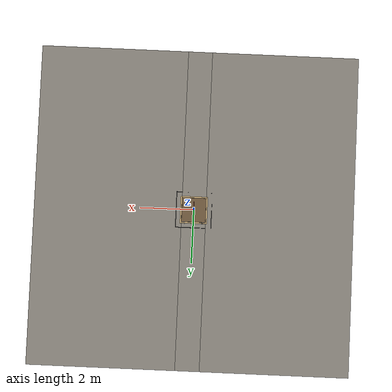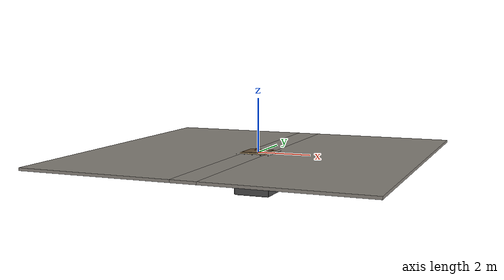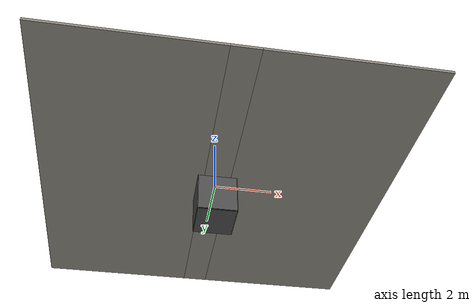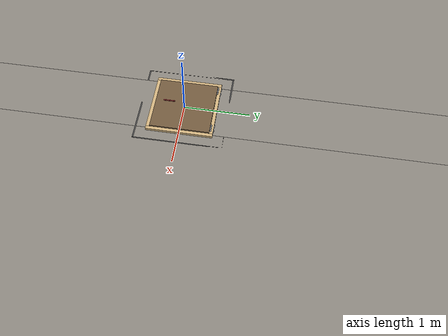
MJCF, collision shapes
<?xml version="1.0" ?>
<mujoco model="db0360_hatch_floor_simple">
  <compiler angle="radian" meshdir="../../hardware" texturedir="../../textures" autolimits="true" inertiafromgeom="false"/>
  <option timestep="0.002" integrator="implicitfast" cone="elliptic" impratio="10" noslip_iterations="3">
    <flag multiccd="enable"/>
  </option>
  <size memory="16M"/>
  <default>
    <geom condim="4" solref="0.005 1" solimp="0.95 0.99 0.001"/>
    <joint solreflimit="0.005 1" solimplimit="0.95 0.99 0.001"/>
    <tendon solreflimit="0.005 1"/>
    <equality solref="0.002 1"/>
  </default>
  <visual>
    <headlight ambient="0.4 0.4 0.4" diffuse="0.7 0.7 0.7" specular="0.2 0.2 0.2"/>
    <quality shadowsize="4096"/>
    <map znear="0.01" zfar="60"/>
  </visual>
  <asset>
    <mesh name="pull_1e5d69a91a" file="pull_1e5d69a91a.obj"/>
    <material name="mat_floor" rgba="0.55 0.53 0.5 1" specular="0.2" shininess="0.15" reflectance="0"/>
    <material name="mat_wall" rgba="0.78 0.76 0.7 1" specular="0.2" shininess="0.1" reflectance="0"/>
    <material name="mat_pit" rgba="0.3 0.3 0.3 1" specular="0.2" shininess="0.1" reflectance="0"/>
    <material name="mat_frame" rgba="0.82 0.7 0.5 1" specular="0.2" shininess="0.45" reflectance="0"/>
    <material name="mat_leaf" rgba="0.451 0.355 0.243 1" specular="0.2" shininess="0.5" reflectance="0"/>
    <material name="mat_hinge" rgba="0.65 0.66 0.68 1" specular="0.74" shininess="0.5" reflectance="0.36"/>
    <material name="mat_op_stainless" rgba="0.75 0.76 0.77 1" specular="0.8" shininess="0.65" reflectance="0.4"/>
    <texture name="skybox" type="skybox" builtin="gradient" rgb1="0.6 0.7 0.85" rgb2="0.9 0.92 0.95" width="256" height="256"/>
  </asset>
  <worldbody>
    <light name="sun" pos="1.5 -2.5 4" dir="-0.3 0.5 -0.8" directional="true" diffuse="0.8 0.8 0.8" specular="0.3 0.3 0.3" castshadow="true"/>
    <light name="fill" pos="-1.5 2.5 3" dir="0.3 -0.5 -0.7" directional="true" diffuse="0.35 0.35 0.4" castshadow="false"/>
    <camera name="robot_view" pos="0 -1.875 0.98" xyaxes="1 0 0 0 0.26963 0.962964" fovy="52"/>
    <camera name="far_view" pos="0 1.875 0.98" xyaxes="-1 0 0 0 -0.26963 0.962964" fovy="52"/>
    <camera name="iso" pos="1.425 -1.575 1.28" xyaxes="0.741536 0.670913 0 -0.242917 0.268487 0.932151" fovy="46"/>
    <camera name="detail_handle" pos="0.35 -0.019 0.2075" xyaxes="0.843661 0.536875 0 -0.426006 0.669439 0.608581" fovy="38"/>
    <geom name="floor_a" type="box" size="2.7725 6 0.05" pos="-3.2275 0 -0.05" material="mat_floor" group="0" contype="1" conaffinity="1" friction="0.6 0.005 0.0001" density="2400"/>
    <geom name="floor_b" type="box" size="2.7725 6 0.05" pos="3.2275 0 -0.05" material="mat_floor" group="0" contype="1" conaffinity="1" friction="0.6 0.005 0.0001" density="2400"/>
    <geom name="floor_c" type="box" size="0.455 2.7725 0.05" pos="0 -3.2275 -0.05" material="mat_floor" group="0" contype="1" conaffinity="1" friction="0.6 0.005 0.0001" density="2400"/>
    <geom name="floor_d" type="box" size="0.455 2.7725 0.05" pos="0 3.2275 -0.05" material="mat_floor" group="0" contype="1" conaffinity="1" friction="0.6 0.005 0.0001" density="2400"/>
    <geom name="pit_floor" type="box" size="0.655 0.655 0.02" pos="0 0 -1.5" material="mat_pit" group="0" contype="1" conaffinity="1" friction="0.6 0.005 0.0001" density="2400"/>
    <geom name="pit_wall_l" type="box" size="0.01 0.675 0.75" pos="-0.665 0 -0.75" material="mat_pit" group="0" contype="1" conaffinity="1" friction="0.6 0.005 0.0001" density="2400"/>
    <geom name="pit_wall_r" type="box" size="0.01 0.675 0.75" pos="0.665 0 -0.75" material="mat_pit" group="0" contype="1" conaffinity="1" friction="0.6 0.005 0.0001" density="2400"/>
    <geom name="pit_wall_n" type="box" size="0.655 0.01 0.75" pos="0 -0.665 -0.75" material="mat_pit" group="0" contype="1" conaffinity="1" friction="0.6 0.005 0.0001" density="2400"/>
    <geom name="pit_wall_f" type="box" size="0.655 0.01 0.75" pos="0 0.665 -0.75" material="mat_pit" group="0" contype="1" conaffinity="1" friction="0.6 0.005 0.0001" density="2400"/>
    <geom name="curb_l" type="box" size="0.025 0.505 0.02" pos="-0.48 0 0.02" material="mat_frame" group="0" contype="1" conaffinity="1" friction="0.6 0.005 0.0001" density="7850"/>
    <geom name="curb_r" type="box" size="0.025 0.505 0.02" pos="0.48 0 0.02" material="mat_frame" group="0" contype="1" conaffinity="1" friction="0.6 0.005 0.0001" density="7850"/>
    <geom name="curb_n" type="box" size="0.455 0.025 0.02" pos="0 -0.48 0.02" material="mat_frame" group="0" contype="1" conaffinity="1" friction="0.6 0.005 0.0001" density="7850"/>
    <geom name="curb_f" type="box" size="0.455 0.025 0.02" pos="0 0.48 0.02" material="mat_frame" group="0" contype="1" conaffinity="1" friction="0.6 0.005 0.0001" density="7850"/>
    <geom name="hatch_hinge_0_curb_n" type="cylinder" size="0.01 0.018" pos="-0.404 0.465 0.04" quat="0.707107 0 0.707107 0" material="mat_hinge" group="1" contype="0" conaffinity="0" density="7850"/>
    <geom name="hatch_hinge_0_curb_strap_n" type="box" size="0.018 0.032 0.005" pos="-0.404 0.485 0.03" material="mat_hinge" group="1" contype="0" conaffinity="0" density="7850"/>
    <geom name="hatch_hinge_0_curb_p" type="cylinder" size="0.01 0.018" pos="-0.316 0.465 0.04" quat="0.707107 0 0.707107 0" material="mat_hinge" group="1" contype="0" conaffinity="0" density="7850"/>
    <geom name="hatch_hinge_0_curb_strap_p" type="box" size="0.018 0.032 0.005" pos="-0.316 0.485 0.03" material="mat_hinge" group="1" contype="0" conaffinity="0" density="7850"/>
    <geom name="hatch_hinge_1_curb_n" type="cylinder" size="0.01 0.018" pos="0.316 0.465 0.04" quat="0.707107 0 0.707107 0" material="mat_hinge" group="1" contype="0" conaffinity="0" density="7850"/>
    <geom name="hatch_hinge_1_curb_strap_n" type="box" size="0.018 0.032 0.005" pos="0.316 0.485 0.03" material="mat_hinge" group="1" contype="0" conaffinity="0" density="7850"/>
    <geom name="hatch_hinge_1_curb_p" type="cylinder" size="0.01 0.018" pos="0.404 0.465 0.04" quat="0.707107 0 0.707107 0" material="mat_hinge" group="1" contype="0" conaffinity="0" density="7850"/>
    <geom name="hatch_hinge_1_curb_strap_p" type="box" size="0.018 0.032 0.005" pos="0.404 0.485 0.03" material="mat_hinge" group="1" contype="0" conaffinity="0" density="7850"/>
    <site name="approach_point" pos="0 -1.5 0" quat="1 0 0 0" size="0.05" rgba="0.2 0.9 0.2 0.5" group="4"/>
    <site name="goal_point" pos="0 0 -1" quat="1 0 0 0" size="0.05" rgba="0.2 0.9 0.2 0.5" group="4"/>
    <site name="door_plane_center" pos="0 0 0" quat="1 0 0 0" size="0.02" rgba="0.2 0.9 0.2 0.5" group="4"/>
    <body name="hatch" pos="0 0.455 0.04">
      <inertial pos="0 -0.447716 0.001196" mass="20.74" quat="0.707106 -0.001098 -0.001098 -0.707106" diaginertia="1.406264937 1.471301262 2.869039662"/>
      <joint name="hatch_hinge" type="hinge" axis="-1 0 0" pos="0 0.01 0" limited="true" range="0 1.570796" damping="0.606642" frictionloss="0.585763" armature="0.02"/>
      <geom name="hatch_slab" type="box" size="0.45 0.451 0.016" pos="0 -0.455 0" material="mat_leaf" group="0" contype="1" conaffinity="1" friction="0.6 0.005 0.0001" density="1"/>
      <geom name="hatch_hinge_0" type="cylinder" size="0.01 0.028" pos="-0.36 0.01 0" quat="0.707107 0 0.707107 0" material="mat_hinge" group="1" contype="0" conaffinity="0" density="7850"/>
      <geom name="hatch_hinge_0_strap" type="box" size="0.028 0.023 0.003" pos="-0.36 -0.007 0.005" material="mat_hinge" group="1" contype="0" conaffinity="0" density="7850"/>
      <geom name="hatch_hinge_1" type="cylinder" size="0.01 0.028" pos="0.36 0.01 0" quat="0.707107 0 0.707107 0" material="mat_hinge" group="1" contype="0" conaffinity="0" density="7850"/>
      <geom name="hatch_hinge_1_strap" type="box" size="0.028 0.023 0.003" pos="0.36 -0.007 0.005" material="mat_hinge" group="1" contype="0" conaffinity="0" density="7850"/>
      <geom name="hatch_pull_p" type="mesh" mesh="pull_1e5d69a91a" pos="0 -0.6825 0.032" quat="0.707107 -0.707107 0 0" material="mat_op_stainless" group="1" contype="0" conaffinity="0" density="3000"/>
      <geom name="hatch_pull_col_p" type="capsule" size="0.0095 0.08" pos="0 -0.6825 0.092" quat="0.707107 0.707107 0 0" material="mat_op_stainless" group="3" contype="1" conaffinity="1" rgba="0.8 0.3 0.3 0.25" friction="0.7 0.01 0.0001" density="3000"/>
      <site name="hatch_pull_grip_p" pos="0 0.076 -0.6825" quat="1 0 0 0" size="0.012" rgba="0.2 0.9 0.2 0.5" group="4"/>
    </body>
  </worldbody>
  <sensor>
    <jointpos name="hatch_hinge_pos" joint="hatch_hinge"/>
    <jointvel name="hatch_hinge_vel" joint="hatch_hinge"/>
  </sensor>
</mujoco>
